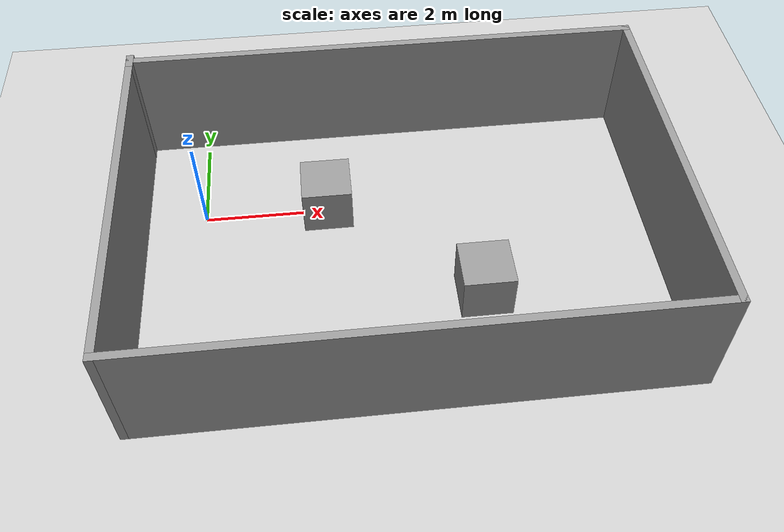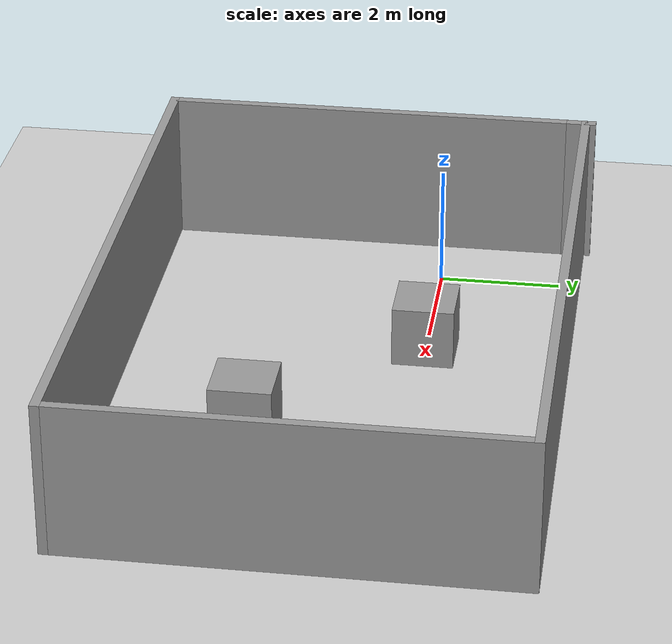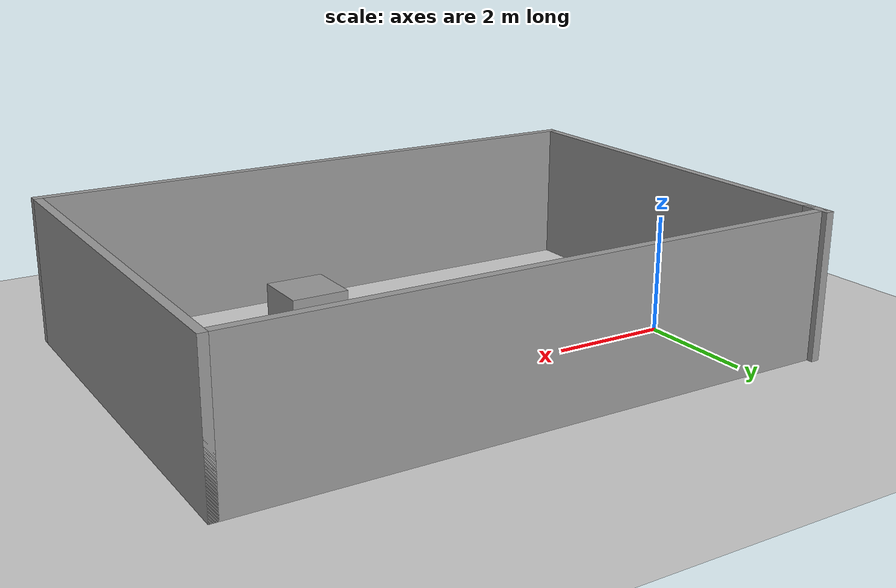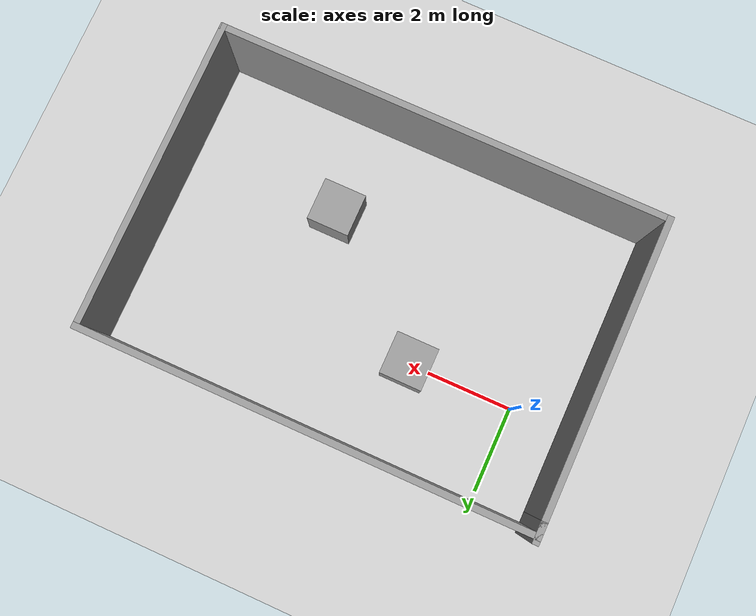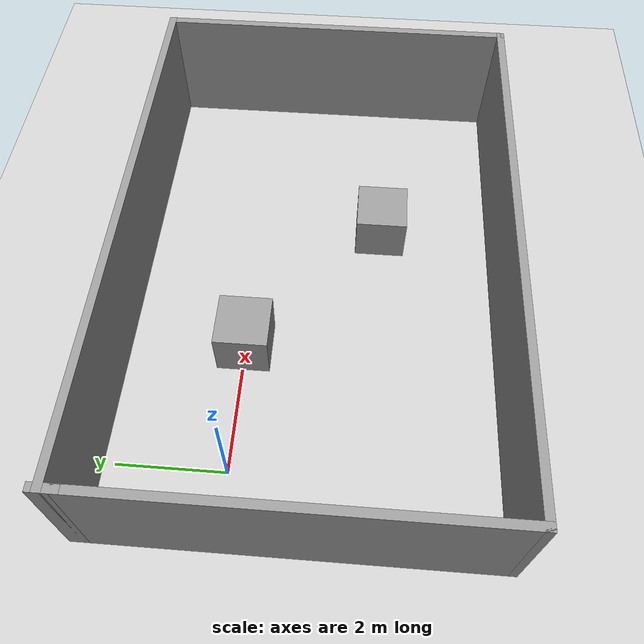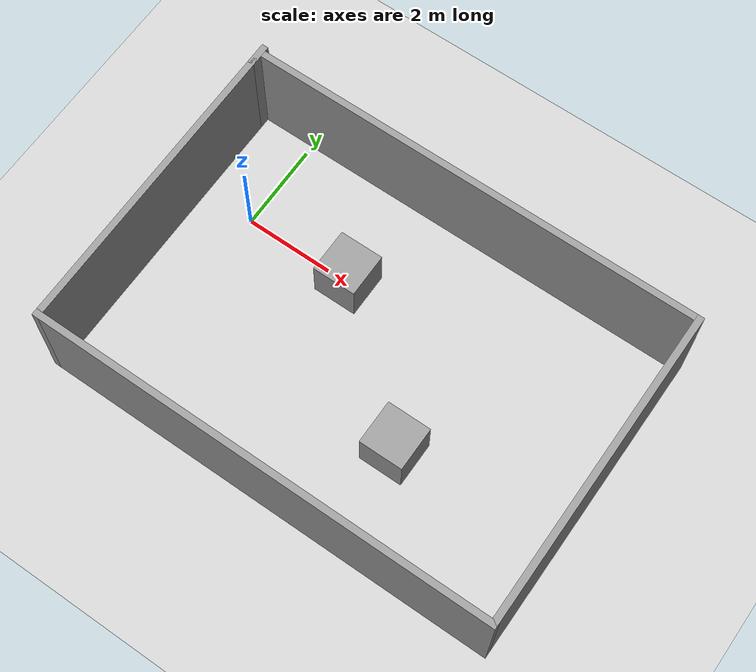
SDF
<sdf version="1.7">
 <world name="default">
  <light name="sun" type="directional">
   <pose>0 0 10 0 -0 0</pose>
   <diffuse>0.8 0.8 0.8 1</diffuse>
   <specular>0.2 0.2 0.2 1</specular>
   <attenuation>
    <range>1000</range>
    <constant>0.9</constant>
    <linear>0.01</linear>
    <quadratic>0.001</quadratic>
   </attenuation>
   <direction>-0.5 0.1 -0.9</direction>
   <spot><inner_angle>0</inner_angle><outer_angle>0</outer_angle><falloff>0</falloff></spot>
  </light>
  <model name="ground_plane">
   <static>1</static>
   <link name="link">
    <collision name="collision">
     <geometry><plane><normal>0 0 1</normal><size>100 100</size></plane></geometry>
     <surface><friction><ode><mu>100</mu><mu2>50</mu2></ode></friction></surface>
    </collision>
    <visual name="visual">
     <cast_shadows>0</cast_shadows>
     <geometry><plane><normal>0 0 1</normal><size>100 100</size></plane></geometry>
     <material>
      <script><uri>file://media/materials/scripts/gazebo.material</uri><name>Gazebo/Grey</name></script>
     </material>
    </visual>
   </link>
  </model>
  <gravity>0 0 -9.8</gravity>
  <magnetic_field>6e-06 2.3e-05 -4.2e-05</magnetic_field>
  <atmosphere type="adiabatic"/>
  <physics type="ode">
   <max_step_size>0.001</max_step_size>
   <real_time_factor>1</real_time_factor>
   <real_time_update_rate>1000</real_time_update_rate>
  </physics>
  <scene><ambient>0.4 0.4 0.4 1</ambient><background>0.7 0.7 0.7 1</background><shadows>1</shadows></scene>
  <audio><device>default</device></audio>
  <spherical_coordinates>
   <surface_model>EARTH_WGS84</surface_model>
   <latitude_deg>0</latitude_deg>
   <longitude_deg>0</longitude_deg>
   <elevation>0</elevation>
   <heading_deg>0</heading_deg>
  </spherical_coordinates>
  <model name="unit_box">
   <pose>2.51737 -0.000502 0.499995 -1e-05 -0 -0</pose>
   <link name="link">
    <inertial>
     <mass>1</mass>
     <inertia>
      <ixx>0.166667</ixx>
      <ixy>0</ixy>
      <ixz>0</ixz>
      <iyy>0.166667</iyy>
      <iyz>0</iyz>
      <izz>0.166667</izz>
     </inertia>
    </inertial>
    <collision name="collision"><geometry><box><size>1 1 1</size></box></geometry></collision>
    <visual name="visual">
     <geometry><box><size>1 1 1</size></box></geometry>
     <material>
      <script><name>Gazebo/Grey</name><uri>file://media/materials/scripts/gazebo.material</uri></script>
     </material>
    </visual>
   </link>
  </model>
  <model name="unit_box_0">
   <pose>5.40348 -2.49116 0.499995 1e-05 -0 0</pose>
   <link name="link">
    <inertial>
     <mass>1</mass>
     <inertia>
      <ixx>0.166667</ixx>
      <ixy>0</ixy>
      <ixz>0</ixz>
      <iyy>0.166667</iyy>
      <iyz>0</iyz>
      <izz>0.166667</izz>
     </inertia>
    </inertial>
    <collision name="collision"><geometry><box><size>1 1 1</size></box></geometry></collision>
    <visual name="visual">
     <geometry><box><size>1 1 1</size></box></geometry>
     <material>
      <script><name>Gazebo/Grey</name><uri>file://media/materials/scripts/gazebo.material</uri></script>
     </material>
    </visual>
   </link>
  </model>
  <model name="room4">
   <pose>3.91138 -1.21839 0 0 -0 0</pose>
   <link name="Wall_2">
    <collision name="Wall_2_Collision">
     <geometry><box><size>10.5 0.15 2.5</size></box></geometry>
     <pose>0 0 1.25 0 -0 0</pose>
    </collision>
    <visual name="Wall_2_Visual">
     <pose>0 0 1.25 0 -0 0</pose>
     <geometry><box><size>10.5 0.15 2.5</size></box></geometry>
     <material>
      <script><uri>file://media/materials/scripts/gazebo.material</uri><name>Gazebo/Grey</name></script>
      <ambient>1 1 1 1</ambient>
     </material>
     <meta><layer>0</layer></meta>
    </visual>
    <pose>-0 3.5 0 0 -0 0</pose>
   </link>
   <link name="Wall_4">
    <collision name="Wall_4_Collision">
     <geometry><box><size>7.25 0.15 2.5</size></box></geometry>
     <pose>0 0 1.25 0 -0 0</pose>
    </collision>
    <visual name="Wall_4_Visual">
     <pose>0 0 1.25 0 -0 0</pose>
     <geometry><box><size>7.25 0.15 2.5</size></box></geometry>
     <material>
      <script><uri>file://media/materials/scripts/gazebo.material</uri><name>Gazebo/Grey</name></script>
      <ambient>1 1 1 1</ambient>
     </material>
     <meta><layer>0</layer></meta>
    </visual>
    <pose>5.175 -0.05 0 0 -0 -1.5708</pose>
   </link>
   <link name="Wall_5">
    <collision name="Wall_5_Collision">
     <geometry><box><size>10.5 0.15 2.5</size></box></geometry>
     <pose>0 0 1.25 0 -0 0</pose>
    </collision>
    <visual name="Wall_5_Visual">
     <pose>0 0 1.25 0 -0 0</pose>
     <geometry><box><size>10.5 0.15 2.5</size></box></geometry>
     <material>
      <script><uri>file://media/materials/scripts/gazebo.material</uri><name>Gazebo/Grey</name></script>
      <ambient>1 1 1 1</ambient>
     </material>
     <meta><layer>0</layer></meta>
    </visual>
    <pose>-0 -3.6 0 0 -0 3.14159</pose>
   </link>
   <link name="Wall_6">
    <collision name="Wall_6_Collision">
     <geometry><box><size>7 0.15 2.5</size></box></geometry>
     <pose>0 0 1.25 0 -0 0</pose>
    </collision>
    <visual name="Wall_6_Visual">
     <pose>0 0 1.25 0 -0 0</pose>
     <geometry><box><size>7 0.15 2.5</size></box></geometry>
     <material>
      <script><uri>file://media/materials/scripts/gazebo.material</uri><name>Gazebo/Grey</name></script>
      <ambient>1 1 1 1</ambient>
     </material>
     <meta><layer>0</layer></meta>
    </visual>
    <pose>-5.175 -0.175 0 0 -0 1.5708</pose>
   </link>
   <link name="Wall_7">
    <collision name="Wall_7_Collision">
     <geometry><box><size>0.5 0.15 2.5</size></box></geometry>
     <pose>0 0 1.25 0 -0 0</pose>
    </collision>
    <visual name="Wall_7_Visual">
     <pose>0 0 1.25 0 -0 0</pose>
     <geometry><box><size>0.5 0.15 2.5</size></box></geometry>
     <material>
      <script><uri>file://media/materials/scripts/gazebo.material</uri><name>Gazebo/Grey</name></script>
      <ambient>1 1 1 1</ambient>
     </material>
     <meta><layer>0</layer></meta>
    </visual>
    <pose>-5.175 3.425 0 0 -0 1.5708</pose>
   </link>
   <static>1</static>
  </model>
 </world>
</sdf>
